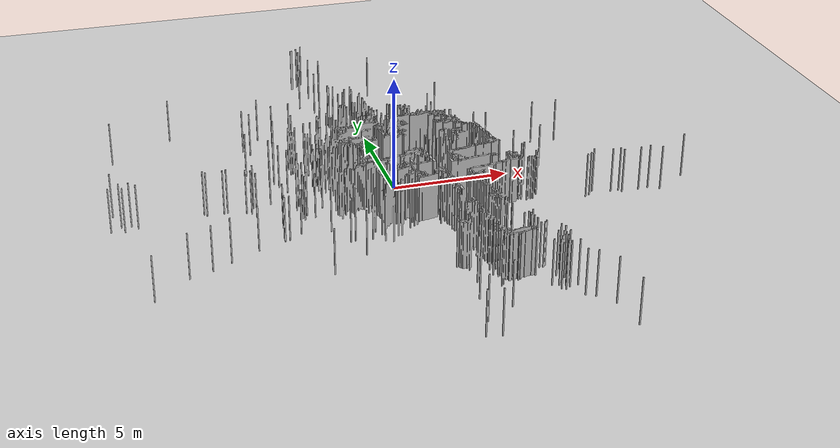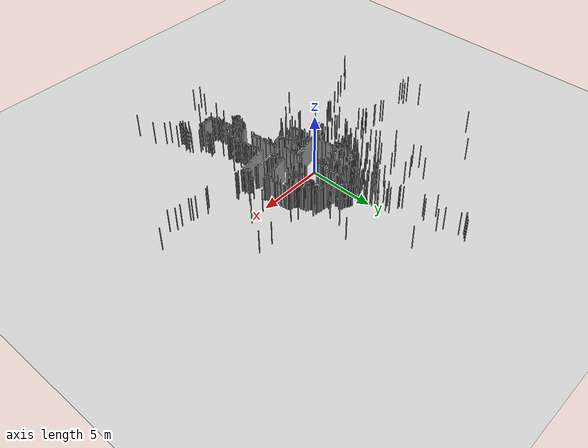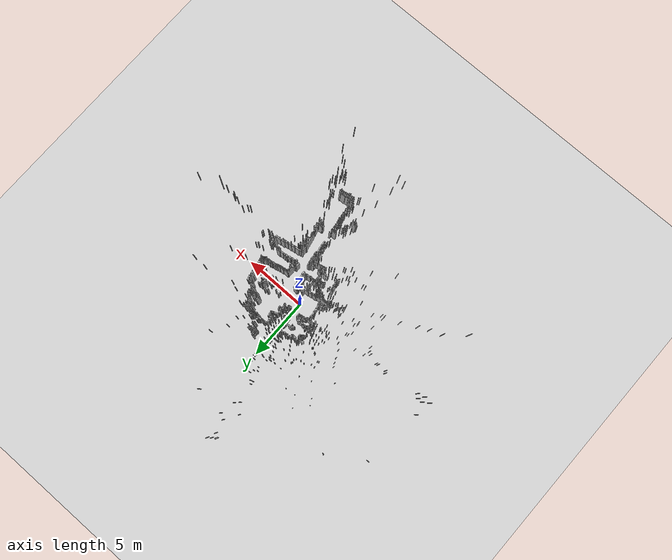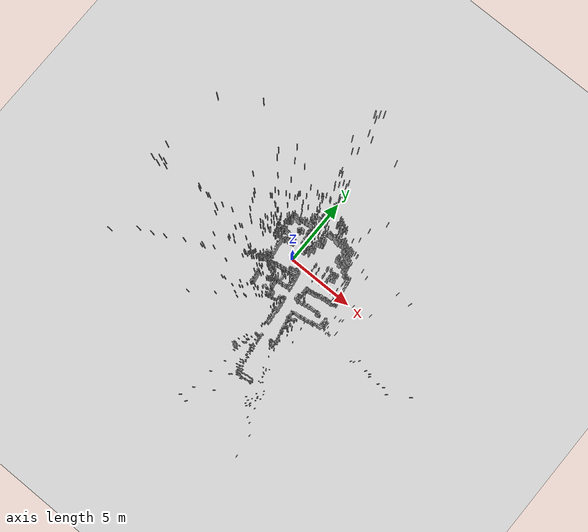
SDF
<?xml version="1.0" ?>
<sdf version="1.4">
  <world name="default">
    <include>
      <uri>model://ground_plane</uri>
    </include>
    <include>
      <uri>model://sun</uri>
    </include>
    <include>
      <uri>model://map_house1</uri>
    </include>
  </world>
</sdf>

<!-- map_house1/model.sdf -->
<sdf version="1.4">
  <model name="map_house1">
    <link name="link">
      <inertial>
        <mass>15</mass>
        <inertia>
          <ixx>0.0</ixx>
          <ixy>0.0</ixy>
          <ixz>0.0</ixz>
          <iyy>0.0</iyy>
          <iyz>0.0</iyz>
          <izz>0.0</izz>
        </inertia>
      </inertial>
      <collision name="collision">
        <pose>0 0 0 0 0 0</pose>
        <geometry>
          <mesh>
            <uri>model://map_house1/meshes/map.stl</uri>
          </mesh>
        </geometry>
      </collision>
      <visual name="visual">
        <pose>0 0 0 0 0 0</pose>
        <geometry>
          <mesh>
            <uri>model://map_house1/meshes/map.stl</uri>
          </mesh>
        </geometry>
      </visual>
    </link>
    <static>1</static>
  </model>
</sdf>
